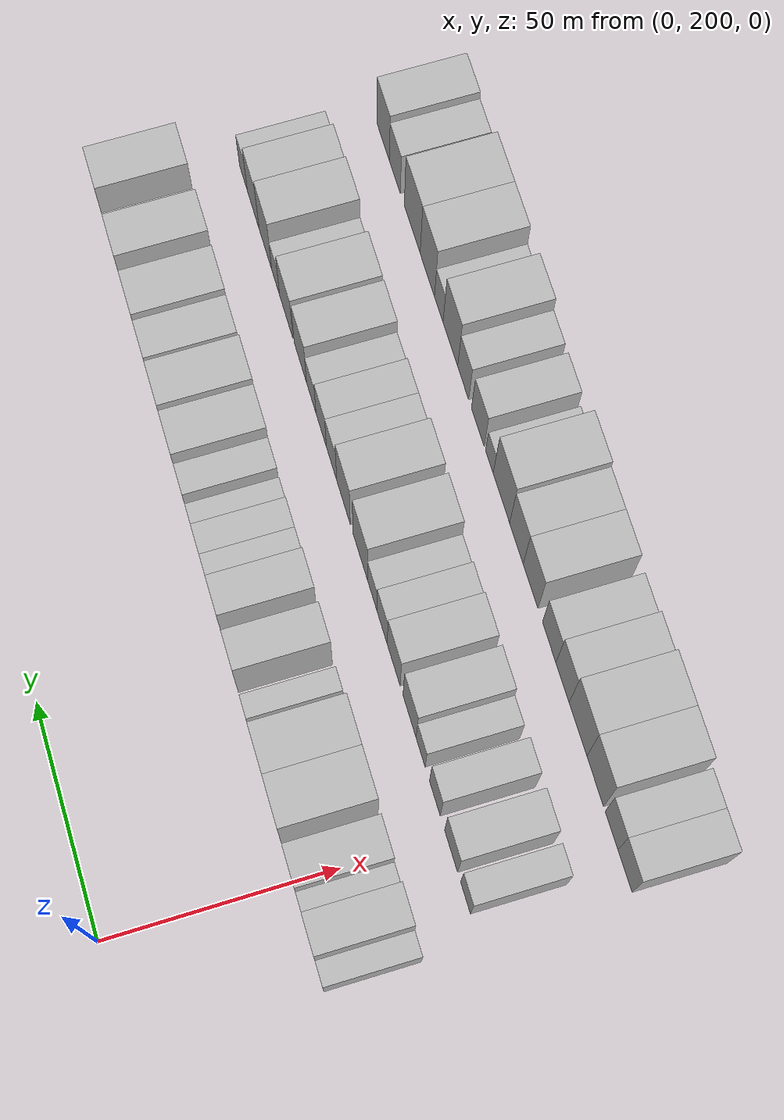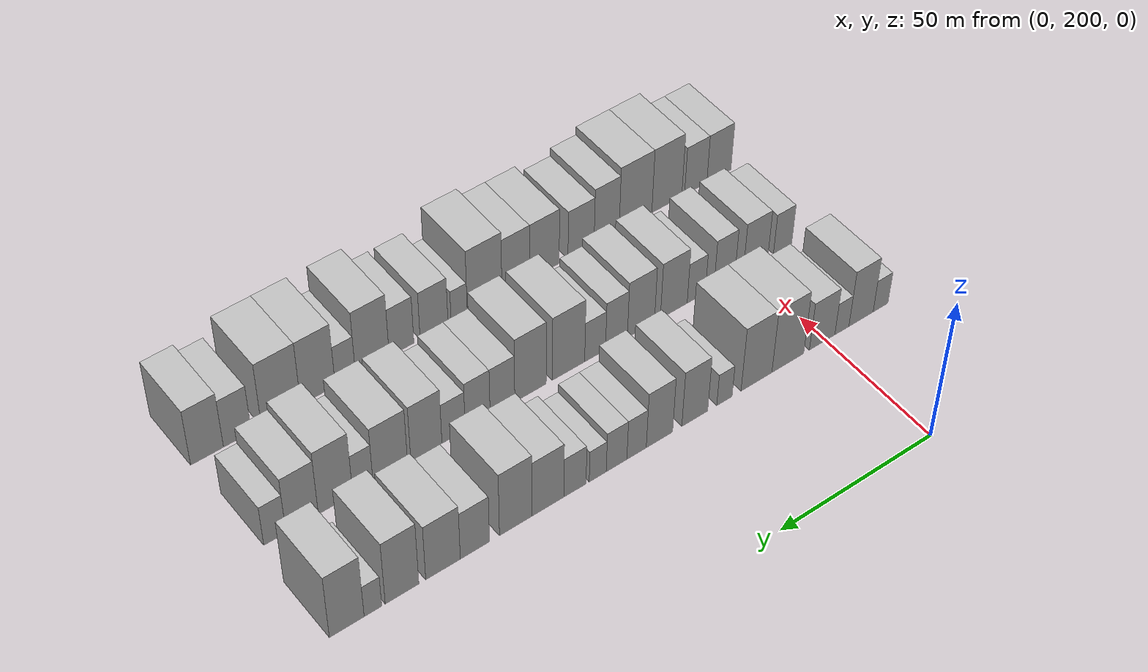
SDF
<sdf version="1.6">
 <world name="default">
  <model name="building_56">
   <static>1</static>
   <pose>50.0000 180.5669 0 0.000000 0.000000 0.000000</pose>
   <link name="link">
    <pose>0 0 6.00 0 0 0</pose>
    <collision name="collision"><geometry><box><size>20.0000 5.3025 12.0000</size></box></geometry></collision>
    <visual name="visual">
     <cast_shadows>0</cast_shadows>
     <geometry><box><size>20.0000 5.3025 12.0000</size></box></geometry>
     <material>
      <script>
       <uri>model://HANNAS_wall/materials/scripts</uri>
       <uri>model://HANNAS_wall/materials/textures</uri>
       <name>vrc/HANNAS_wall</name>
      </script>
     </material>
    </visual>
   </link>
  </model>
  <model name="building_57">
   <static>1</static>
   <pose>50.0000 187.5243 0 0.000000 0.000000 0.000000</pose>
   <link name="link">
    <pose>0 0 10.50 0 0 0</pose>
    <collision name="collision"><geometry><box><size>20.0000 8.6123 21.0000</size></box></geometry></collision>
    <visual name="visual">
     <cast_shadows>0</cast_shadows>
     <geometry><box><size>20.0000 8.6123 21.0000</size></box></geometry>
     <material>
      <script>
       <uri>model://HANNAS_wall/materials/scripts</uri>
       <uri>model://HANNAS_wall/materials/textures</uri>
       <name>vrc/HANNAS_wall</name>
      </script>
     </material>
    </visual>
   </link>
  </model>
  <model name="building_58">
   <static>1</static>
   <pose>50.0000 194.3068 0 0.000000 0.000000 0.000000</pose>
   <link name="link">
    <pose>0 0 6.00 0 0 0</pose>
    <collision name="collision"><geometry><box><size>20.0000 4.9527 12.0000</size></box></geometry></collision>
    <visual name="visual">
     <cast_shadows>0</cast_shadows>
     <geometry><box><size>20.0000 4.9527 12.0000</size></box></geometry>
     <material>
      <script>
       <uri>model://HANNAS_wall/materials/scripts</uri>
       <uri>model://HANNAS_wall/materials/textures</uri>
       <name>vrc/HANNAS_wall</name>
      </script>
     </material>
    </visual>
   </link>
  </model>
  <model name="building_59">
   <static>1</static>
   <pose>50.0000 201.2192 0 0.000000 0.000000 0.000000</pose>
   <link name="link">
    <pose>0 0 9.00 0 0 0</pose>
    <collision name="collision"><geometry><box><size>20.0000 8.8721 18.0000</size></box></geometry></collision>
    <visual name="visual">
     <cast_shadows>0</cast_shadows>
     <geometry><box><size>20.0000 8.8721 18.0000</size></box></geometry>
     <material>
      <script>
       <uri>model://HANNAS_wall/materials/scripts</uri>
       <uri>model://HANNAS_wall/materials/textures</uri>
       <name>vrc/HANNAS_wall</name>
      </script>
     </material>
    </visual>
   </link>
  </model>
  <model name="building_60">
   <static>1</static>
   <pose>50.0000 213.1062 0 0.000000 0.000000 0.000000</pose>
   <link name="link">
    <pose>0 0 12.00 0 0 0</pose>
    <collision name="collision"><geometry><box><size>20.0000 10.9019 24.0000</size></box></geometry></collision>
    <visual name="visual">
     <cast_shadows>0</cast_shadows>
     <geometry><box><size>20.0000 10.9019 24.0000</size></box></geometry>
     <material>
      <script>
       <uri>model://HANNAS_wall/materials/scripts</uri>
       <uri>model://HANNAS_wall/materials/textures</uri>
       <name>vrc/HANNAS_wall</name>
      </script>
     </material>
    </visual>
   </link>
  </model>
  <model name="building_61">
   <static>1</static>
   <pose>50.0000 223.7945 0 0.000000 0.000000 0.000000</pose>
   <link name="link">
    <pose>0 0 12.00 0 0 0</pose>
    <collision name="collision"><geometry><box><size>20.0000 10.4748 24.0000</size></box></geometry></collision>
    <visual name="visual">
     <cast_shadows>0</cast_shadows>
     <geometry><box><size>20.0000 10.4748 24.0000</size></box></geometry>
     <material>
      <script>
       <uri>model://HANNAS_wall/materials/scripts</uri>
       <uri>model://HANNAS_wall/materials/textures</uri>
       <name>vrc/HANNAS_wall</name>
      </script>
     </material>
    </visual>
   </link>
  </model>
  <model name="building_62">
   <static>1</static>
   <pose>50.0000 234.5943 0 0.000000 0.000000 0.000000</pose>
   <link name="link">
    <pose>0 0 6.00 0 0 0</pose>
    <collision name="collision"><geometry><box><size>20.0000 5.1248 12.0000</size></box></geometry></collision>
    <visual name="visual">
     <cast_shadows>0</cast_shadows>
     <geometry><box><size>20.0000 5.1248 12.0000</size></box></geometry>
     <material>
      <script>
       <uri>model://HANNAS_wall/materials/scripts</uri>
       <uri>model://HANNAS_wall/materials/textures</uri>
       <name>vrc/HANNAS_wall</name>
      </script>
     </material>
    </visual>
   </link>
  </model>
  <model name="building_63">
   <static>1</static>
   <pose>50.0000 244.4211 0 0.000000 0.000000 0.000000</pose>
   <link name="link">
    <pose>0 0 10.50 0 0 0</pose>
    <collision name="collision"><geometry><box><size>20.0000 8.5288 21.0000</size></box></geometry></collision>
    <visual name="visual">
     <cast_shadows>0</cast_shadows>
     <geometry><box><size>20.0000 8.5288 21.0000</size></box></geometry>
     <material>
      <script>
       <uri>model://HANNAS_wall/materials/scripts</uri>
       <uri>model://HANNAS_wall/materials/textures</uri>
       <name>vrc/HANNAS_wall</name>
      </script>
     </material>
    </visual>
   </link>
  </model>
  <model name="building_64">
   <static>1</static>
   <pose>50.0000 255.9613 0 0.000000 0.000000 0.000000</pose>
   <link name="link">
    <pose>0 0 10.50 0 0 0</pose>
    <collision name="collision"><geometry><box><size>20.0000 8.5516 21.0000</size></box></geometry></collision>
    <visual name="visual">
     <cast_shadows>0</cast_shadows>
     <geometry><box><size>20.0000 8.5516 21.0000</size></box></geometry>
     <material>
      <script>
       <uri>model://HANNAS_wall/materials/scripts</uri>
       <uri>model://HANNAS_wall/materials/textures</uri>
       <name>vrc/HANNAS_wall</name>
      </script>
     </material>
    </visual>
   </link>
  </model>
  <model name="building_65">
   <static>1</static>
   <pose>50.0000 263.3479 0 0.000000 0.000000 0.000000</pose>
   <link name="link">
    <pose>0 0 7.50 0 0 0</pose>
    <collision name="collision"><geometry><box><size>20.0000 6.2216 15.0000</size></box></geometry></collision>
    <visual name="visual">
     <cast_shadows>0</cast_shadows>
     <geometry><box><size>20.0000 6.2216 15.0000</size></box></geometry>
     <material>
      <script>
       <uri>model://HANNAS_wall/materials/scripts</uri>
       <uri>model://HANNAS_wall/materials/textures</uri>
       <name>vrc/HANNAS_wall</name>
      </script>
     </material>
    </visual>
   </link>
  </model>
  <model name="building_66">
   <static>1</static>
   <pose>50.0000 269.7477 0 0.000000 0.000000 0.000000</pose>
   <link name="link">
    <pose>0 0 7.50 0 0 0</pose>
    <collision name="collision"><geometry><box><size>20.0000 6.5778 15.0000</size></box></geometry></collision>
    <visual name="visual">
     <cast_shadows>0</cast_shadows>
     <geometry><box><size>20.0000 6.5778 15.0000</size></box></geometry>
     <material>
      <script>
       <uri>model://HANNAS_wall/materials/scripts</uri>
       <uri>model://HANNAS_wall/materials/textures</uri>
       <name>vrc/HANNAS_wall</name>
      </script>
     </material>
    </visual>
   </link>
  </model>
  <model name="building_67">
   <static>1</static>
   <pose>50.0000 275.7212 0 0.000000 0.000000 0.000000</pose>
   <link name="link">
    <pose>0 0 6.00 0 0 0</pose>
    <collision name="collision"><geometry><box><size>20.0000 5.3692 12.0000</size></box></geometry></collision>
    <visual name="visual">
     <cast_shadows>0</cast_shadows>
     <geometry><box><size>20.0000 5.3692 12.0000</size></box></geometry>
     <material>
      <script>
       <uri>model://HANNAS_wall/materials/scripts</uri>
       <uri>model://HANNAS_wall/materials/textures</uri>
       <name>vrc/HANNAS_wall</name>
      </script>
     </material>
    </visual>
   </link>
  </model>
  <model name="building_68">
   <static>1</static>
   <pose>50.0000 282.8761 0 0.000000 0.000000 0.000000</pose>
   <link name="link">
    <pose>0 0 7.50 0 0 0</pose>
    <collision name="collision"><geometry><box><size>20.0000 6.9406 15.0000</size></box></geometry></collision>
    <visual name="visual">
     <cast_shadows>0</cast_shadows>
     <geometry><box><size>20.0000 6.9406 15.0000</size></box></geometry>
     <material>
      <script>
       <uri>model://HANNAS_wall/materials/scripts</uri>
       <uri>model://HANNAS_wall/materials/textures</uri>
       <name>vrc/HANNAS_wall</name>
      </script>
     </material>
    </visual>
   </link>
  </model>
  <model name="building_69">
   <static>1</static>
   <pose>50.0000 291.2326 0 0.000000 0.000000 0.000000</pose>
   <link name="link">
    <pose>0 0 10.50 0 0 0</pose>
    <collision name="collision"><geometry><box><size>20.0000 9.7722 21.0000</size></box></geometry></collision>
    <visual name="visual">
     <cast_shadows>0</cast_shadows>
     <geometry><box><size>20.0000 9.7722 21.0000</size></box></geometry>
     <material>
      <script>
       <uri>model://HANNAS_wall/materials/scripts</uri>
       <uri>model://HANNAS_wall/materials/textures</uri>
       <name>vrc/HANNAS_wall</name>
      </script>
     </material>
    </visual>
   </link>
  </model>
  <model name="building_70">
   <static>1</static>
   <pose>50.0000 301.0977 0 0.000000 0.000000 0.000000</pose>
   <link name="link">
    <pose>0 0 12.00 0 0 0</pose>
    <collision name="collision"><geometry><box><size>20.0000 9.9581 24.0000</size></box></geometry></collision>
    <visual name="visual">
     <cast_shadows>0</cast_shadows>
     <geometry><box><size>20.0000 9.9581 24.0000</size></box></geometry>
     <material>
      <script>
       <uri>model://HANNAS_wall/materials/scripts</uri>
       <uri>model://HANNAS_wall/materials/textures</uri>
       <name>vrc/HANNAS_wall</name>
      </script>
     </material>
    </visual>
   </link>
  </model>
  <model name="building_71">
   <static>1</static>
   <pose>50.0000 313.4425 0 0.000000 0.000000 0.000000</pose>
   <link name="link">
    <pose>0 0 9.00 0 0 0</pose>
    <collision name="collision"><geometry><box><size>20.0000 8.7315 18.0000</size></box></geometry></collision>
    <visual name="visual">
     <cast_shadows>0</cast_shadows>
     <geometry><box><size>20.0000 8.7315 18.0000</size></box></geometry>
     <material>
      <script>
       <uri>model://HANNAS_wall/materials/scripts</uri>
       <uri>model://HANNAS_wall/materials/textures</uri>
       <name>vrc/HANNAS_wall</name>
      </script>
     </material>
    </visual>
   </link>
  </model>
  <model name="building_72">
   <static>1</static>
   <pose>50.0000 322.9179 0 0.000000 0.000000 0.000000</pose>
   <link name="link">
    <pose>0 0 10.50 0 0 0</pose>
    <collision name="collision"><geometry><box><size>20.0000 10.2194 21.0000</size></box></geometry></collision>
    <visual name="visual">
     <cast_shadows>0</cast_shadows>
     <geometry><box><size>20.0000 10.2194 21.0000</size></box></geometry>
     <material>
      <script>
       <uri>model://HANNAS_wall/materials/scripts</uri>
       <uri>model://HANNAS_wall/materials/textures</uri>
       <name>vrc/HANNAS_wall</name>
      </script>
     </material>
    </visual>
   </link>
  </model>
  <model name="building_73">
   <static>1</static>
   <pose>50.0000 334.9105 0 0.000000 0.000000 0.000000</pose>
   <link name="link">
    <pose>0 0 12.00 0 0 0</pose>
    <collision name="collision"><geometry><box><size>20.0000 9.7659 24.0000</size></box></geometry></collision>
    <visual name="visual">
     <cast_shadows>0</cast_shadows>
     <geometry><box><size>20.0000 9.7659 24.0000</size></box></geometry>
     <material>
      <script>
       <uri>model://HANNAS_wall/materials/scripts</uri>
       <uri>model://HANNAS_wall/materials/textures</uri>
       <name>vrc/HANNAS_wall</name>
      </script>
     </material>
    </visual>
   </link>
  </model>
  <model name="building_74">
   <static>1</static>
   <pose>50.0000 343.3175 0 0.000000 0.000000 0.000000</pose>
   <link name="link">
    <pose>0 0 6.00 0 0 0</pose>
    <collision name="collision"><geometry><box><size>20.0000 5.0479 12.0000</size></box></geometry></collision>
    <visual name="visual">
     <cast_shadows>0</cast_shadows>
     <geometry><box><size>20.0000 5.0479 12.0000</size></box></geometry>
     <material>
      <script>
       <uri>model://HANNAS_wall/materials/scripts</uri>
       <uri>model://HANNAS_wall/materials/textures</uri>
       <name>vrc/HANNAS_wall</name>
      </script>
     </material>
    </visual>
   </link>
  </model>
  <model name="building_75">
   <static>1</static>
   <pose>50.0000 350.7799 0 0.000000 0.000000 0.000000</pose>
   <link name="link">
    <pose>0 0 12.00 0 0 0</pose>
    <collision name="collision"><geometry><box><size>20.0000 9.8770 24.0000</size></box></geometry></collision>
    <visual name="visual">
     <cast_shadows>0</cast_shadows>
     <geometry><box><size>20.0000 9.8770 24.0000</size></box></geometry>
     <material>
      <script>
       <uri>model://HANNAS_wall/materials/scripts</uri>
       <uri>model://HANNAS_wall/materials/textures</uri>
       <name>vrc/HANNAS_wall</name>
      </script>
     </material>
    </visual>
   </link>
  </model>
  <model name="building_136">
   <static>1</static>
   <pose>82.0000 187.3117 0 0.000000 0.000000 0.000000</pose>
   <link name="link">
    <pose>0 0 7.50 0 0 0</pose>
    <collision name="collision"><geometry><box><size>20.0000 6.5380 15.0000</size></box></geometry></collision>
    <visual name="visual">
     <cast_shadows>0</cast_shadows>
     <geometry><box><size>20.0000 6.5380 15.0000</size></box></geometry>
     <material>
      <script>
       <uri>model://HANNAS_wall/materials/scripts</uri>
       <uri>model://HANNAS_wall/materials/textures</uri>
       <name>vrc/HANNAS_wall</name>
      </script>
     </material>
    </visual>
   </link>
  </model>
  <model name="building_137">
   <static>1</static>
   <pose>82.0000 196.9333 0 0.000000 0.000000 0.000000</pose>
   <link name="link">
    <pose>0 0 9.00 0 0 0</pose>
    <collision name="collision"><geometry><box><size>20.0000 8.7052 18.0000</size></box></geometry></collision>
    <visual name="visual">
     <cast_shadows>0</cast_shadows>
     <geometry><box><size>20.0000 8.7052 18.0000</size></box></geometry>
     <material>
      <script>
       <uri>model://HANNAS_wall/materials/scripts</uri>
       <uri>model://HANNAS_wall/materials/textures</uri>
       <name>vrc/HANNAS_wall</name>
      </script>
     </material>
    </visual>
   </link>
  </model>
  <model name="building_138">
   <static>1</static>
   <pose>82.0000 207.9379 0 0.000000 0.000000 0.000000</pose>
   <link name="link">
    <pose>0 0 9.00 0 0 0</pose>
    <collision name="collision"><geometry><box><size>20.0000 7.3039 18.0000</size></box></geometry></collision>
    <visual name="visual">
     <cast_shadows>0</cast_shadows>
     <geometry><box><size>20.0000 7.3039 18.0000</size></box></geometry>
     <material>
      <script>
       <uri>model://HANNAS_wall/materials/scripts</uri>
       <uri>model://HANNAS_wall/materials/textures</uri>
       <name>vrc/HANNAS_wall</name>
      </script>
     </material>
    </visual>
   </link>
  </model>
  <model name="building_139">
   <static>1</static>
   <pose>82.0000 217.7088 0 0.000000 0.000000 0.000000</pose>
   <link name="link">
    <pose>0 0 7.50 0 0 0</pose>
    <collision name="collision"><geometry><box><size>20.0000 6.2378 15.0000</size></box></geometry></collision>
    <visual name="visual">
     <cast_shadows>0</cast_shadows>
     <geometry><box><size>20.0000 6.2378 15.0000</size></box></geometry>
     <material>
      <script>
       <uri>model://HANNAS_wall/materials/scripts</uri>
       <uri>model://HANNAS_wall/materials/textures</uri>
       <name>vrc/HANNAS_wall</name>
      </script>
     </material>
    </visual>
   </link>
  </model>
  <model name="building_140">
   <static>1</static>
   <pose>82.0000 225.4096 0 0.000000 0.000000 0.000000</pose>
   <link name="link">
    <pose>0 0 10.50 0 0 0</pose>
    <collision name="collision"><geometry><box><size>20.0000 9.1638 21.0000</size></box></geometry></collision>
    <visual name="visual">
     <cast_shadows>0</cast_shadows>
     <geometry><box><size>20.0000 9.1638 21.0000</size></box></geometry>
     <material>
      <script>
       <uri>model://HANNAS_wall/materials/scripts</uri>
       <uri>model://HANNAS_wall/materials/textures</uri>
       <name>vrc/HANNAS_wall</name>
      </script>
     </material>
    </visual>
   </link>
  </model>
  <model name="building_141">
   <static>1</static>
   <pose>82.0000 236.5571 0 0.000000 0.000000 0.000000</pose>
   <link name="link">
    <pose>0 0 10.50 0 0 0</pose>
    <collision name="collision"><geometry><box><size>20.0000 9.1312 21.0000</size></box></geometry></collision>
    <visual name="visual">
     <cast_shadows>0</cast_shadows>
     <geometry><box><size>20.0000 9.1312 21.0000</size></box></geometry>
     <material>
      <script>
       <uri>model://HANNAS_wall/materials/scripts</uri>
       <uri>model://HANNAS_wall/materials/textures</uri>
       <name>vrc/HANNAS_wall</name>
      </script>
     </material>
    </visual>
   </link>
  </model>
  <model name="building_142">
   <static>1</static>
   <pose>82.0000 244.7655 0 0.000000 0.000000 0.000000</pose>
   <link name="link">
    <pose>0 0 9.00 0 0 0</pose>
    <collision name="collision"><geometry><box><size>20.0000 7.2855 18.0000</size></box></geometry></collision>
    <visual name="visual">
     <cast_shadows>0</cast_shadows>
     <geometry><box><size>20.0000 7.2855 18.0000</size></box></geometry>
     <material>
      <script>
       <uri>model://HANNAS_wall/materials/scripts</uri>
       <uri>model://HANNAS_wall/materials/textures</uri>
       <name>vrc/HANNAS_wall</name>
      </script>
     </material>
    </visual>
   </link>
  </model>
  <model name="building_143">
   <static>1</static>
   <pose>82.0000 251.8441 0 0.000000 0.000000 0.000000</pose>
   <link name="link">
    <pose>0 0 7.50 0 0 0</pose>
    <collision name="collision"><geometry><box><size>20.0000 6.8716 15.0000</size></box></geometry></collision>
    <visual name="visual">
     <cast_shadows>0</cast_shadows>
     <geometry><box><size>20.0000 6.8716 15.0000</size></box></geometry>
     <material>
      <script>
       <uri>model://HANNAS_wall/materials/scripts</uri>
       <uri>model://HANNAS_wall/materials/textures</uri>
       <name>vrc/HANNAS_wall</name>
      </script>
     </material>
    </visual>
   </link>
  </model>
  <model name="building_144">
   <static>1</static>
   <pose>82.0000 260.5525 0 0.000000 0.000000 0.000000</pose>
   <link name="link">
    <pose>0 0 12.00 0 0 0</pose>
    <collision name="collision"><geometry><box><size>20.0000 10.5453 24.0000</size></box></geometry></collision>
    <visual name="visual">
     <cast_shadows>0</cast_shadows>
     <geometry><box><size>20.0000 10.5453 24.0000</size></box></geometry>
     <material>
      <script>
       <uri>model://HANNAS_wall/materials/scripts</uri>
       <uri>model://HANNAS_wall/materials/textures</uri>
       <name>vrc/HANNAS_wall</name>
      </script>
     </material>
    </visual>
   </link>
  </model>
  <model name="building_145">
   <static>1</static>
   <pose>82.0000 272.8520 0 0.000000 0.000000 0.000000</pose>
   <link name="link">
    <pose>0 0 12.00 0 0 0</pose>
    <collision name="collision"><geometry><box><size>20.0000 10.0537 24.0000</size></box></geometry></collision>
    <visual name="visual">
     <cast_shadows>0</cast_shadows>
     <geometry><box><size>20.0000 10.0537 24.0000</size></box></geometry>
     <material>
      <script>
       <uri>model://HANNAS_wall/materials/scripts</uri>
       <uri>model://HANNAS_wall/materials/textures</uri>
       <name>vrc/HANNAS_wall</name>
      </script>
     </material>
    </visual>
   </link>
  </model>
  <model name="building_146">
   <static>1</static>
   <pose>82.0000 281.7895 0 0.000000 0.000000 0.000000</pose>
   <link name="link">
    <pose>0 0 9.00 0 0 0</pose>
    <collision name="collision"><geometry><box><size>20.0000 7.8212 18.0000</size></box></geometry></collision>
    <visual name="visual">
     <cast_shadows>0</cast_shadows>
     <geometry><box><size>20.0000 7.8212 18.0000</size></box></geometry>
     <material>
      <script>
       <uri>model://HANNAS_wall/materials/scripts</uri>
       <uri>model://HANNAS_wall/materials/textures</uri>
       <name>vrc/HANNAS_wall</name>
      </script>
     </material>
    </visual>
   </link>
  </model>
  <model name="building_147">
   <static>1</static>
   <pose>82.0000 289.6127 0 0.000000 0.000000 0.000000</pose>
   <link name="link">
    <pose>0 0 9.00 0 0 0</pose>
    <collision name="collision"><geometry><box><size>20.0000 7.8253 18.0000</size></box></geometry></collision>
    <visual name="visual">
     <cast_shadows>0</cast_shadows>
     <geometry><box><size>20.0000 7.8253 18.0000</size></box></geometry>
     <material>
      <script>
       <uri>model://HANNAS_wall/materials/scripts</uri>
       <uri>model://HANNAS_wall/materials/textures</uri>
       <name>vrc/HANNAS_wall</name>
      </script>
     </material>
    </visual>
   </link>
  </model>
  <model name="building_148">
   <static>1</static>
   <pose>82.0000 297.1384 0 0.000000 0.000000 0.000000</pose>
   <link name="link">
    <pose>0 0 7.50 0 0 0</pose>
    <collision name="collision"><geometry><box><size>20.0000 7.2260 15.0000</size></box></geometry></collision>
    <visual name="visual">
     <cast_shadows>0</cast_shadows>
     <geometry><box><size>20.0000 7.2260 15.0000</size></box></geometry>
     <material>
      <script>
       <uri>model://HANNAS_wall/materials/scripts</uri>
       <uri>model://HANNAS_wall/materials/textures</uri>
       <name>vrc/HANNAS_wall</name>
      </script>
     </material>
    </visual>
   </link>
  </model>
  <model name="building_149">
   <static>1</static>
   <pose>82.0000 305.5249 0 0.000000 0.000000 0.000000</pose>
   <link name="link">
    <pose>0 0 10.50 0 0 0</pose>
    <collision name="collision"><geometry><box><size>20.0000 9.5469 21.0000</size></box></geometry></collision>
    <visual name="visual">
     <cast_shadows>0</cast_shadows>
     <geometry><box><size>20.0000 9.5469 21.0000</size></box></geometry>
     <material>
      <script>
       <uri>model://HANNAS_wall/materials/scripts</uri>
       <uri>model://HANNAS_wall/materials/textures</uri>
       <name>vrc/HANNAS_wall</name>
      </script>
     </material>
    </visual>
   </link>
  </model>
  <model name="building_150">
   <static>1</static>
   <pose>82.0000 316.5131 0 0.000000 0.000000 0.000000</pose>
   <link name="link">
    <pose>0 0 10.50 0 0 0</pose>
    <collision name="collision"><geometry><box><size>20.0000 10.4296 21.0000</size></box></geometry></collision>
    <visual name="visual">
     <cast_shadows>0</cast_shadows>
     <geometry><box><size>20.0000 10.4296 21.0000</size></box></geometry>
     <material>
      <script>
       <uri>model://HANNAS_wall/materials/scripts</uri>
       <uri>model://HANNAS_wall/materials/textures</uri>
       <name>vrc/HANNAS_wall</name>
      </script>
     </material>
    </visual>
   </link>
  </model>
  <model name="building_151">
   <static>1</static>
   <pose>82.0000 324.7616 0 0.000000 0.000000 0.000000</pose>
   <link name="link">
    <pose>0 0 7.50 0 0 0</pose>
    <collision name="collision"><geometry><box><size>20.0000 6.0674 15.0000</size></box></geometry></collision>
    <visual name="visual">
     <cast_shadows>0</cast_shadows>
     <geometry><box><size>20.0000 6.0674 15.0000</size></box></geometry>
     <material>
      <script>
       <uri>model://HANNAS_wall/materials/scripts</uri>
       <uri>model://HANNAS_wall/materials/textures</uri>
       <name>vrc/HANNAS_wall</name>
      </script>
     </material>
    </visual>
   </link>
  </model>
  <model name="building_152">
   <static>1</static>
   <pose>82.0000 332.8796 0 0.000000 0.000000 0.000000</pose>
   <link name="link">
    <pose>0 0 12.00 0 0 0</pose>
    <collision name="collision"><geometry><box><size>20.0000 10.1684 24.0000</size></box></geometry></collision>
    <visual name="visual">
     <cast_shadows>0</cast_shadows>
     <geometry><box><size>20.0000 10.1684 24.0000</size></box></geometry>
     <material>
      <script>
       <uri>model://HANNAS_wall/materials/scripts</uri>
       <uri>model://HANNAS_wall/materials/textures</uri>
       <name>vrc/HANNAS_wall</name>
      </script>
     </material>
    </visual>
   </link>
  </model>
  <model name="building_153">
   <static>1</static>
   <pose>82.0000 342.6883 0 0.000000 0.000000 0.000000</pose>
   <link name="link">
    <pose>0 0 10.50 0 0 0</pose>
    <collision name="collision"><geometry><box><size>20.0000 9.4491 21.0000</size></box></geometry></collision>
    <visual name="visual">
     <cast_shadows>0</cast_shadows>
     <geometry><box><size>20.0000 9.4491 21.0000</size></box></geometry>
     <material>
      <script>
       <uri>model://HANNAS_wall/materials/scripts</uri>
       <uri>model://HANNAS_wall/materials/textures</uri>
       <name>vrc/HANNAS_wall</name>
      </script>
     </material>
    </visual>
   </link>
  </model>
  <model name="building_154">
   <static>1</static>
   <pose>82.0000 350.6098 0 0.000000 0.000000 0.000000</pose>
   <link name="link">
    <pose>0 0 7.50 0 0 0</pose>
    <collision name="collision"><geometry><box><size>20.0000 6.3940 15.0000</size></box></geometry></collision>
    <visual name="visual">
     <cast_shadows>0</cast_shadows>
     <geometry><box><size>20.0000 6.3940 15.0000</size></box></geometry>
     <material>
      <script>
       <uri>model://HANNAS_wall/materials/scripts</uri>
       <uri>model://HANNAS_wall/materials/textures</uri>
       <name>vrc/HANNAS_wall</name>
      </script>
     </material>
    </visual>
   </link>
  </model>
  <model name="building_213">
   <static>1</static>
   <pose>114.0000 183.2669 0 0.000000 0.000000 0.000000</pose>
   <link name="link">
    <pose>0 0 9.00 0 0 0</pose>
    <collision name="collision"><geometry><box><size>20.0000 8.7602 18.0000</size></box></geometry></collision>
    <visual name="visual">
     <cast_shadows>0</cast_shadows>
     <geometry><box><size>20.0000 8.7602 18.0000</size></box></geometry>
     <material>
      <script>
       <uri>model://HANNAS_wall/materials/scripts</uri>
       <uri>model://HANNAS_wall/materials/textures</uri>
       <name>vrc/HANNAS_wall</name>
      </script>
     </material>
    </visual>
   </link>
  </model>
  <model name="building_214">
   <static>1</static>
   <pose>114.0000 191.6680 0 0.000000 0.000000 0.000000</pose>
   <link name="link">
    <pose>0 0 9.00 0 0 0</pose>
    <collision name="collision"><geometry><box><size>20.0000 8.0421 18.0000</size></box></geometry></collision>
    <visual name="visual">
     <cast_shadows>0</cast_shadows>
     <geometry><box><size>20.0000 8.0421 18.0000</size></box></geometry>
     <material>
      <script>
       <uri>model://HANNAS_wall/materials/scripts</uri>
       <uri>model://HANNAS_wall/materials/textures</uri>
       <name>vrc/HANNAS_wall</name>
      </script>
     </material>
    </visual>
   </link>
  </model>
  <model name="building_215">
   <static>1</static>
   <pose>114.0000 202.0102 0 0.000000 0.000000 0.000000</pose>
   <link name="link">
    <pose>0 0 12.00 0 0 0</pose>
    <collision name="collision"><geometry><box><size>20.0000 10.6422 24.0000</size></box></geometry></collision>
    <visual name="visual">
     <cast_shadows>0</cast_shadows>
     <geometry><box><size>20.0000 10.6422 24.0000</size></box></geometry>
     <material>
      <script>
       <uri>model://HANNAS_wall/materials/scripts</uri>
       <uri>model://HANNAS_wall/materials/textures</uri>
       <name>vrc/HANNAS_wall</name>
      </script>
     </material>
    </visual>
   </link>
  </model>
  <model name="building_216">
   <static>1</static>
   <pose>114.0000 213.0806 0 0.000000 0.000000 0.000000</pose>
   <link name="link">
    <pose>0 0 12.00 0 0 0</pose>
    <collision name="collision"><geometry><box><size>20.0000 11.4986 24.0000</size></box></geometry></collision>
    <visual name="visual">
     <cast_shadows>0</cast_shadows>
     <geometry><box><size>20.0000 11.4986 24.0000</size></box></geometry>
     <material>
      <script>
       <uri>model://HANNAS_wall/materials/scripts</uri>
       <uri>model://HANNAS_wall/materials/textures</uri>
       <name>vrc/HANNAS_wall</name>
      </script>
     </material>
    </visual>
   </link>
  </model>
  <model name="building_217">
   <static>1</static>
   <pose>114.0000 223.1724 0 0.000000 0.000000 0.000000</pose>
   <link name="link">
    <pose>0 0 10.50 0 0 0</pose>
    <collision name="collision"><geometry><box><size>20.0000 8.6851 21.0000</size></box></geometry></collision>
    <visual name="visual">
     <cast_shadows>0</cast_shadows>
     <geometry><box><size>20.0000 8.6851 21.0000</size></box></geometry>
     <material>
      <script>
       <uri>model://HANNAS_wall/materials/scripts</uri>
       <uri>model://HANNAS_wall/materials/textures</uri>
       <name>vrc/HANNAS_wall</name>
      </script>
     </material>
    </visual>
   </link>
  </model>
  <model name="building_218">
   <static>1</static>
   <pose>114.0000 231.9861 0 0.000000 0.000000 0.000000</pose>
   <link name="link">
    <pose>0 0 9.00 0 0 0</pose>
    <collision name="collision"><geometry><box><size>20.0000 8.9421 18.0000</size></box></geometry></collision>
    <visual name="visual">
     <cast_shadows>0</cast_shadows>
     <geometry><box><size>20.0000 8.9421 18.0000</size></box></geometry>
     <material>
      <script>
       <uri>model://HANNAS_wall/materials/scripts</uri>
       <uri>model://HANNAS_wall/materials/textures</uri>
       <name>vrc/HANNAS_wall</name>
      </script>
     </material>
    </visual>
   </link>
  </model>
  <model name="building_219">
   <static>1</static>
   <pose>114.0000 244.4055 0 0.000000 0.000000 0.000000</pose>
   <link name="link">
    <pose>0 0 10.50 0 0 0</pose>
    <collision name="collision"><geometry><box><size>20.0000 9.8967 21.0000</size></box></geometry></collision>
    <visual name="visual">
     <cast_shadows>0</cast_shadows>
     <geometry><box><size>20.0000 9.8967 21.0000</size></box></geometry>
     <material>
      <script>
       <uri>model://HANNAS_wall/materials/scripts</uri>
       <uri>model://HANNAS_wall/materials/textures</uri>
       <name>vrc/HANNAS_wall</name>
      </script>
     </material>
    </visual>
   </link>
  </model>
  <model name="building_220">
   <static>1</static>
   <pose>114.0000 253.9848 0 0.000000 0.000000 0.000000</pose>
   <link name="link">
    <pose>0 0 10.50 0 0 0</pose>
    <collision name="collision"><geometry><box><size>20.0000 9.2620 21.0000</size></box></geometry></collision>
    <visual name="visual">
     <cast_shadows>0</cast_shadows>
     <geometry><box><size>20.0000 9.2620 21.0000</size></box></geometry>
     <material>
      <script>
       <uri>model://HANNAS_wall/materials/scripts</uri>
       <uri>model://HANNAS_wall/materials/textures</uri>
       <name>vrc/HANNAS_wall</name>
      </script>
     </material>
    </visual>
   </link>
  </model>
  <model name="building_221">
   <static>1</static>
   <pose>114.0000 264.3128 0 0.000000 0.000000 0.000000</pose>
   <link name="link">
    <pose>0 0 12.00 0 0 0</pose>
    <collision name="collision"><geometry><box><size>20.0000 11.3940 24.0000</size></box></geometry></collision>
    <visual name="visual">
     <cast_shadows>0</cast_shadows>
     <geometry><box><size>20.0000 11.3940 24.0000</size></box></geometry>
     <material>
      <script>
       <uri>model://HANNAS_wall/materials/scripts</uri>
       <uri>model://HANNAS_wall/materials/textures</uri>
       <name>vrc/HANNAS_wall</name>
      </script>
     </material>
    </visual>
   </link>
  </model>
  <model name="building_222">
   <static>1</static>
   <pose>114.0000 272.6461 0 0.000000 0.000000 0.000000</pose>
   <link name="link">
    <pose>0 0 6.00 0 0 0</pose>
    <collision name="collision"><geometry><box><size>20.0000 5.2727 12.0000</size></box></geometry></collision>
    <visual name="visual">
     <cast_shadows>0</cast_shadows>
     <geometry><box><size>20.0000 5.2727 12.0000</size></box></geometry>
     <material>
      <script>
       <uri>model://HANNAS_wall/materials/scripts</uri>
       <uri>model://HANNAS_wall/materials/textures</uri>
       <name>vrc/HANNAS_wall</name>
      </script>
     </material>
    </visual>
   </link>
  </model>
  <model name="building_223">
   <static>1</static>
   <pose>114.0000 280.7646 0 0.000000 0.000000 0.000000</pose>
   <link name="link">
    <pose>0 0 9.00 0 0 0</pose>
    <collision name="collision"><geometry><box><size>20.0000 8.9642 18.0000</size></box></geometry></collision>
    <visual name="visual">
     <cast_shadows>0</cast_shadows>
     <geometry><box><size>20.0000 8.9642 18.0000</size></box></geometry>
     <material>
      <script>
       <uri>model://HANNAS_wall/materials/scripts</uri>
       <uri>model://HANNAS_wall/materials/textures</uri>
       <name>vrc/HANNAS_wall</name>
      </script>
     </material>
    </visual>
   </link>
  </model>
  <model name="building_224">
   <static>1</static>
   <pose>114.0000 291.1550 0 0.000000 0.000000 0.000000</pose>
   <link name="link">
    <pose>0 0 9.00 0 0 0</pose>
    <collision name="collision"><geometry><box><size>20.0000 7.8167 18.0000</size></box></geometry></collision>
    <visual name="visual">
     <cast_shadows>0</cast_shadows>
     <geometry><box><size>20.0000 7.8167 18.0000</size></box></geometry>
     <material>
      <script>
       <uri>model://HANNAS_wall/materials/scripts</uri>
       <uri>model://HANNAS_wall/materials/textures</uri>
       <name>vrc/HANNAS_wall</name>
      </script>
     </material>
    </visual>
   </link>
  </model>
  <model name="building_225">
   <static>1</static>
   <pose>114.0000 300.3429 0 0.000000 0.000000 0.000000</pose>
   <link name="link">
    <pose>0 0 12.00 0 0 0</pose>
    <collision name="collision"><geometry><box><size>20.0000 10.5590 24.0000</size></box></geometry></collision>
    <visual name="visual">
     <cast_shadows>0</cast_shadows>
     <geometry><box><size>20.0000 10.5590 24.0000</size></box></geometry>
     <material>
      <script>
       <uri>model://HANNAS_wall/materials/scripts</uri>
       <uri>model://HANNAS_wall/materials/textures</uri>
       <name>vrc/HANNAS_wall</name>
      </script>
     </material>
    </visual>
   </link>
  </model>
  <model name="building_226">
   <static>1</static>
   <pose>114.0000 308.7639 0 0.000000 0.000000 0.000000</pose>
   <link name="link">
    <pose>0 0 7.50 0 0 0</pose>
    <collision name="collision"><geometry><box><size>20.0000 6.2830 15.0000</size></box></geometry></collision>
    <visual name="visual">
     <cast_shadows>0</cast_shadows>
     <geometry><box><size>20.0000 6.2830 15.0000</size></box></geometry>
     <material>
      <script>
       <uri>model://HANNAS_wall/materials/scripts</uri>
       <uri>model://HANNAS_wall/materials/textures</uri>
       <name>vrc/HANNAS_wall</name>
      </script>
     </material>
    </visual>
   </link>
  </model>
  <model name="building_227">
   <static>1</static>
   <pose>114.0000 317.1962 0 0.000000 0.000000 0.000000</pose>
   <link name="link">
    <pose>0 0 12.00 0 0 0</pose>
    <collision name="collision"><geometry><box><size>20.0000 10.5816 24.0000</size></box></geometry></collision>
    <visual name="visual">
     <cast_shadows>0</cast_shadows>
     <geometry><box><size>20.0000 10.5816 24.0000</size></box></geometry>
     <material>
      <script>
       <uri>model://HANNAS_wall/materials/scripts</uri>
       <uri>model://HANNAS_wall/materials/textures</uri>
       <name>vrc/HANNAS_wall</name>
      </script>
     </material>
    </visual>
   </link>
  </model>
  <model name="building_228">
   <static>1</static>
   <pose>114.0000 328.4230 0 0.000000 0.000000 0.000000</pose>
   <link name="link">
    <pose>0 0 12.00 0 0 0</pose>
    <collision name="collision"><geometry><box><size>20.0000 11.8722 24.0000</size></box></geometry></collision>
    <visual name="visual">
     <cast_shadows>0</cast_shadows>
     <geometry><box><size>20.0000 11.8722 24.0000</size></box></geometry>
     <material>
      <script>
       <uri>model://HANNAS_wall/materials/scripts</uri>
       <uri>model://HANNAS_wall/materials/textures</uri>
       <name>vrc/HANNAS_wall</name>
      </script>
     </material>
    </visual>
   </link>
  </model>
  <model name="building_229">
   <static>1</static>
   <pose>114.0000 341.4970 0 0.000000 0.000000 0.000000</pose>
   <link name="link">
    <pose>0 0 9.00 0 0 0</pose>
    <collision name="collision"><geometry><box><size>20.0000 8.2757 18.0000</size></box></geometry></collision>
    <visual name="visual">
     <cast_shadows>0</cast_shadows>
     <geometry><box><size>20.0000 8.2757 18.0000</size></box></geometry>
     <material>
      <script>
       <uri>model://HANNAS_wall/materials/scripts</uri>
       <uri>model://HANNAS_wall/materials/textures</uri>
       <name>vrc/HANNAS_wall</name>
      </script>
     </material>
    </visual>
   </link>
  </model>
  <model name="building_230">
   <static>1</static>
   <pose>114.0000 350.4574 0 0.000000 0.000000 0.000000</pose>
   <link name="link">
    <pose>0 0 10.50 0 0 0</pose>
    <collision name="collision"><geometry><box><size>20.0000 9.6450 21.0000</size></box></geometry></collision>
    <visual name="visual">
     <cast_shadows>0</cast_shadows>
     <geometry><box><size>20.0000 9.6450 21.0000</size></box></geometry>
     <material>
      <script>
       <uri>model://HANNAS_wall/materials/scripts</uri>
       <uri>model://HANNAS_wall/materials/textures</uri>
       <name>vrc/HANNAS_wall</name>
      </script>
     </material>
    </visual>
   </link>
  </model>
 </world>
</sdf>
